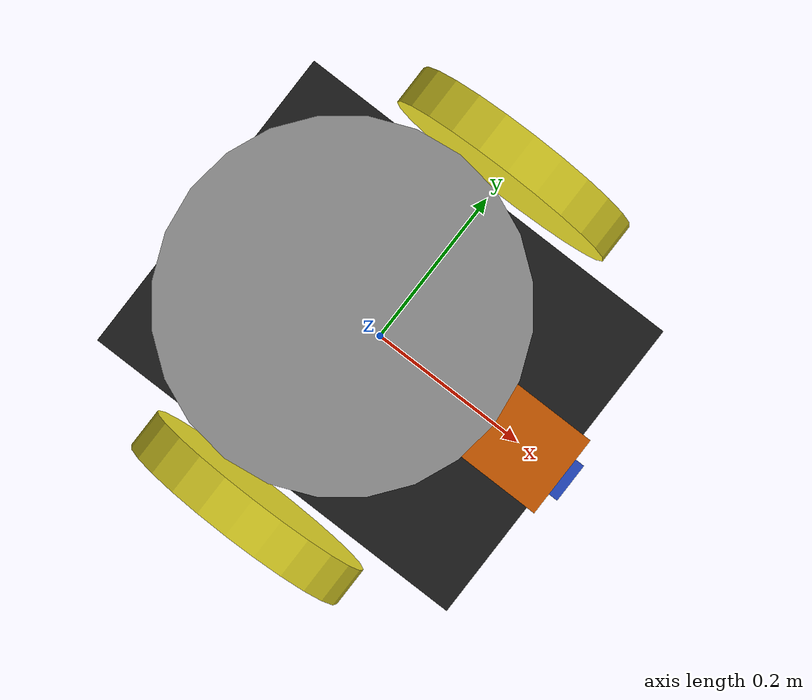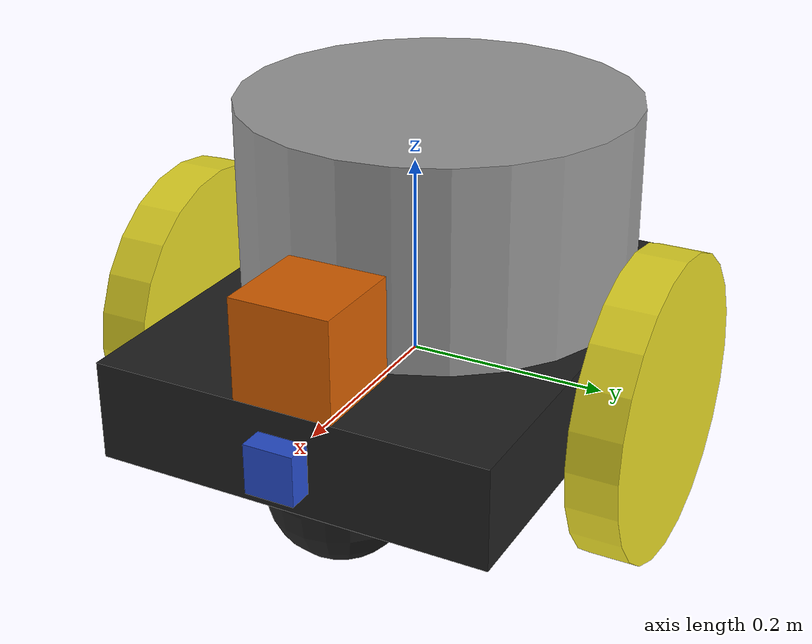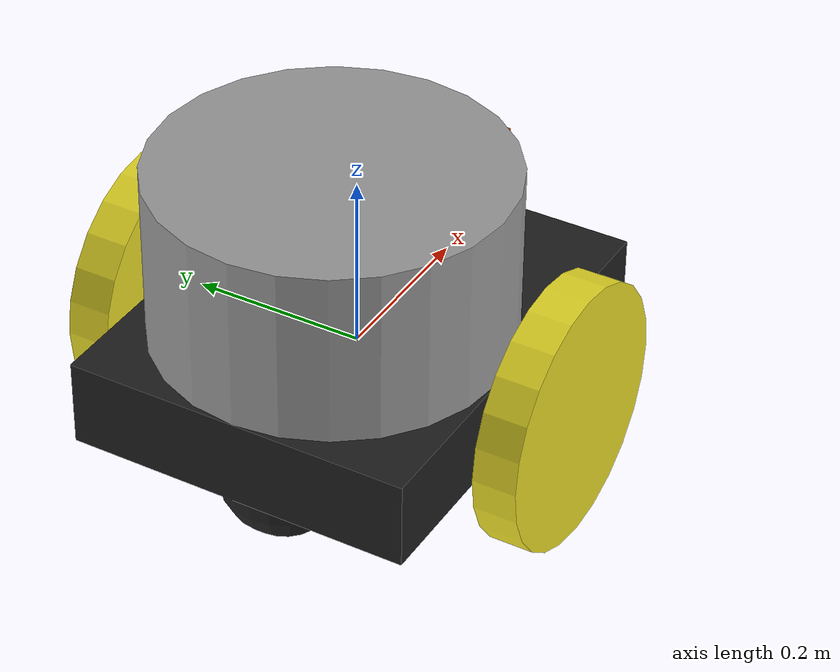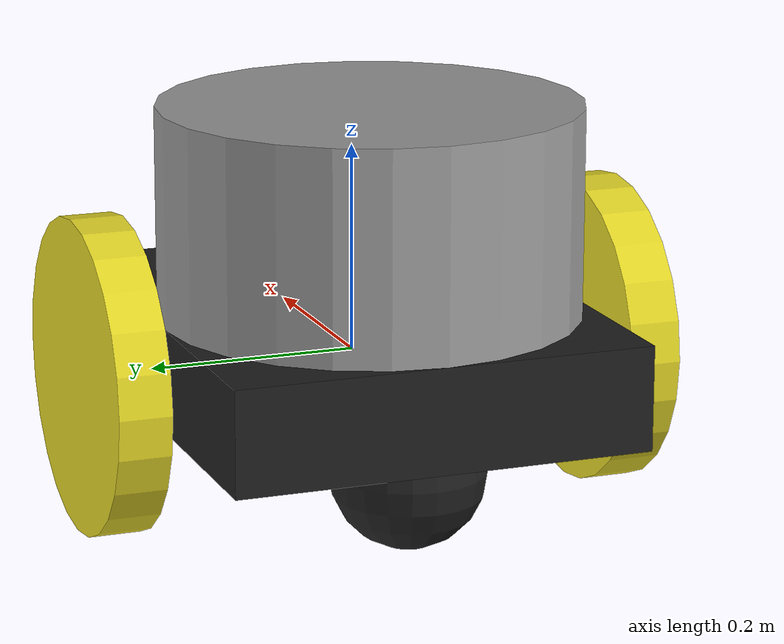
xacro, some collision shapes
<?xml version='1.0'?>

<robot name="my_robot" xmlns:xacro="http://www.ros.org/wiki/xacro">

  <xacro:include filename="$(find my_robot)/urdf/my_robot.gazebo" />

  <link name="robot_footprint"></link>

  <joint name="robot_footprint_joint" type="fixed">
    <origin xyz="0 0 0" rpy="0 0 0" />
    <parent link="robot_footprint"/>
    <child link="chassis" />
  </joint>

  <joint type="continuous" name="left_wheel_hinge">
    <origin xyz="0 0.25 0" rpy="0 0 0"/>
    <child link="left_wheel"/>
    <parent link="chassis"/>
    <axis xyz="0 1 0" rpy="0 0 0"/>
    <limit effort="10000" velocity="1000"/>
    <dynamics damping="1.0" friction="1.0"/>
  </joint>

  <joint type="continuous" name="right_wheel_hinge">
    <origin xyz="0 -0.25 0" rpy="0 0 0"/>
    <child link="right_wheel"/>
    <parent link="chassis"/>
    <axis xyz="0 1 0" rpy="0 0 0"/>
    <limit effort="10000" velocity="1000"/>
    <dynamics damping="1.0" friction="1.0"/>
  </joint>

  <joint type="fixed" name="camera_joint">
    <axis xyz="0 1 0"/>
    <origin xyz="0.25 0 0" rpy="0 0 0"/>
    <parent link="chassis"/>
    <child link="camera"/>
  </joint>

  <joint name="camera_optical_joint" type="fixed">
    <origin xyz="0 0 0" rpy="-1.5707 0 -1.5707"/>
    <parent link="camera"/>
    <child link="camera_link_optical"/>
  </joint>

  <joint type="fixed" name="hokuyo_joint">
    <axis xyz="0 1 0" />
    <origin xyz="0.2 0 0.1" rpy="0 0 0"/>
    <parent link="chassis" />
    <child link="hokuyo" />
  </joint>

   <joint type="fixed" name="trash_bin_joint">
    <axis xyz="0 1 0" />
    <origin xyz="-0.05 0 0.1" rpy="0 0 0"/>
    <parent link="chassis" />
    <child link="trash_bin" />
  </joint>

  <gazebo reference="chassis">
    <material>Gazebo/Black</material>
  </gazebo>

  <gazebo reference="left_wheel">
    <material>Gazebo/Yellow</material>
  </gazebo>

  <gazebo reference="right_wheel">
    <material>Gazebo/Yellow</material>
  </gazebo>

  <gazebo reference="camera">
    <material>Gazebo/Blue</material>
  </gazebo>

  <gazebo reference="trash_bin">
    <material>Gazebo/Gray</material>
  </gazebo>

  <link name='chassis'>
    <pose>0 0 0.1 0 0 0</pose>

    <inertial>
      <mass value="15.0"/>
      <origin xyz="0.0 0 0" rpy=" 0 0 0"/>
      <inertia
          ixx="0.1" ixy="0" ixz="0"
          iyy="0.1" iyz="0"
          izz="0.1"
      />
    </inertial>

    <collision name='collision'>
      <origin xyz="0 0 0" rpy=" 0 0 0"/>
      <geometry>
        <box size=".5 .4 .1"/>
      </geometry>
    </collision>

    <visual name='chassis_visual'>
      <origin xyz="0 0 0" rpy=" 0 0 0"/>
      <geometry>
        <box size=".5 .4 .1"/>
      </geometry>
    </visual>

    <collision name='back_caster_collision'>
      <origin xyz="-0.15 0 -0.075" rpy=" 0 0 0"/>
      <geometry>
        <sphere radius="0.074"/>
      </geometry>
    </collision>

    <visual name='back_caster_visual'>
      <origin xyz="-0.15 0 -0.075" rpy=" 0 0 0"/>
      <geometry>
        <sphere radius="0.074"/>
      </geometry>
    </visual>

    <collision name='front_caster_collision'>
      <origin xyz="0.15 0 -0.075" rpy=" 0 0 0"/>
      <geometry>
        <sphere radius="0.074"/>
      </geometry>
    </collision>

    <visual name='front_caster_visual'>
      <origin xyz="0.15 0 -0.075" rpy=" 0 0 0"/>
      <geometry>
        <sphere radius="0.074"/>
      </geometry>
    </visual>

  </link>

  <link name='left_wheel'>
    <inertial>
      <mass value="5"/>
      <origin xyz="0 0 0" rpy="0 1.5707 1.5707"/>
      <inertia
          ixx="0.1" ixy="0" ixz="0"
          iyy="0.1" iyz="0"
          izz="0.1"
      />
    </inertial>
    <visual name='left_wheel_visual'>
        <origin xyz="0 0 0" rpy="0 1.5707 1.5707" />
        <geometry>
            <cylinder radius="0.15" length="0.05" />
        </geometry>
    </visual>
    <collision name='left_wheel_collision'>
        <origin xyz="0 0 0" rpy="0 1.5707 1.5707" />
        <geometry>
            <cylinder radius="0.15" length="0.05" />
        </geometry>
    </collision>
  </link>

  <link name='right_wheel'>
    <inertial>
      <mass value="5"/>
      <origin xyz="0 0 0" rpy="0 1.5707 1.5707"/>
      <inertia
          ixx="0.1" ixy="0" ixz="0"
          iyy="0.1" iyz="0"
          izz="0.1"
      />
    </inertial>
    <visual name='right_wheel_visual'>
        <origin xyz="0 0 0" rpy="0 1.5707 1.5707" />
        <geometry>
            <cylinder radius="0.15" length="0.05" />
        </geometry>
    </visual>
    <collision name='right_wheel_collision'>
        <origin xyz="0 0 0" rpy="0 1.5707 1.5707" />
        <geometry>
            <cylinder radius="0.15" length="0.05" />
        </geometry>
    </collision>
  </link>

  <link name='camera'>
    <inertial>
      <origin xyz="0 0 0" rpy="0 0 0"/>
      <mass value="0.1"/>
      <inertia
          ixx="1e-6" ixy="0" ixz="0"
          iyy="1e-6" iyz="0"
          izz="1e-6"
      />
      <box_inertia m="0.1" x="0.05" y="0.05" z="0.05"/>
    </inertial>
    <visual name='camera_visual'>
      <origin xyz="0 0 0" rpy="0 0 0"/>
      <geometry>
        <box size="0.05 0.05 0.05" />
      </geometry>
    </visual>
    <collision name='camera_collision'>
      <origin xyz="0 0 0" rpy="0 0 0"/>
      <geometry>
        <box size="0.05 0.05 0.05" />
      </geometry>
    </collision>
  </link>

  <link name='hokuyo'>
    <inertial>
      <origin xyz="0 0 0" rpy="0 0 0"/>
      <mass value="1e-5" />
      <inertia
          ixx="1e-6" ixy="0" ixz="0"
          iyy="1e-6" iyz="0"
          izz="1e-6"
      />
    </inertial>
    <collision name='hokuyo_collision'>
      <geometry>
        <box size="0.1 0.1 0.1" />
      </geometry>
    </collision>
    <visual name='hokuyo_visual'>
      <geometry>
        <mesh filename="package://my_robot/meshes/hokuyo.dae" />
      </geometry>
    </visual>
  </link>

  <link name='trash_bin'>
    <inertial>
      <mass value="5"/>
      <origin xyz="0 0 0" rpy="0 0 0"/>
      <inertia
          ixx="0.1" ixy="0" ixz="0"
          iyy="0.1" iyz="0"
          izz="0.1"
      />
    </inertial>
    <visual name='trash_bin_visual'>
        <origin xyz="0 0 0" rpy="0 0 0" />
        <geometry>
            <cylinder radius="0.2" length="0.3" />
        </geometry>
    </visual>
    <collision name='trash_bin_collision'>
        <origin xyz="0 0 0" rpy="0 0 0" />
        <geometry>
            <cylinder radius="0.2" length="0.3" />
        </geometry>
    </collision>
  </link>
  <link name="camera_link_optical">
  </link>
</robot>
